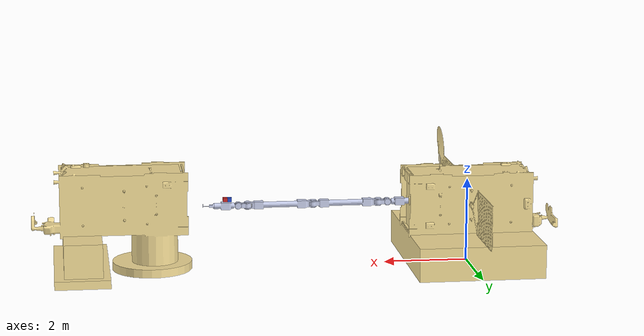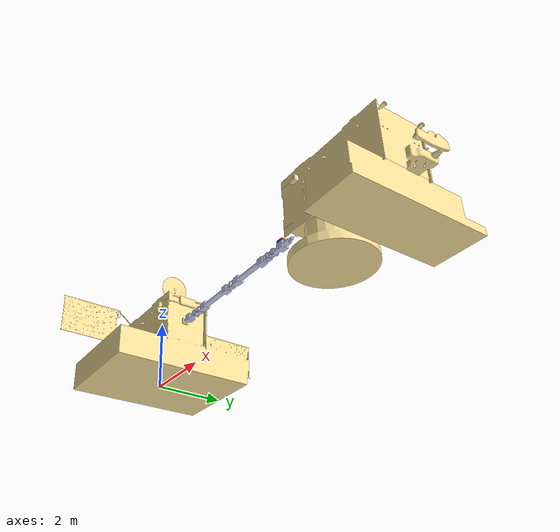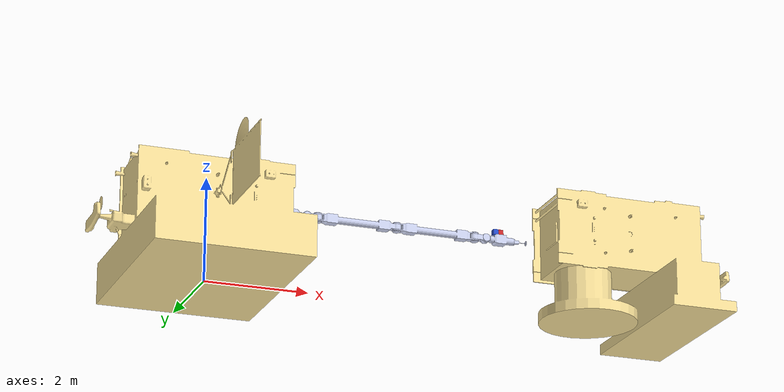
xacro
<?xml version="1.0"?>
<!-- Name your robot here -->
<robot name ="satellite_servicer" xmlns:xacro="http://wiki.ros.org/xacro">

	<!-- Include your urdf files here -->
	<!-- Include Robot's urdf filepath -->
	<xacro:include filename="$(find satellite_servicer)/urdf/satellite_servicer.urdf"/>

	<!-- Add your gazebo sensors here -->
	<!-- blade camera plugin -->
    <gazebo reference="blade_camera_link">
        <sensor type="camera" name="blade_camera">
        <update_rate>30.0</update_rate>
        <camera name="head">
            <horizontal_fov>1.3962634</horizontal_fov>
            <image>
            <width>800</width>
            <height>800</height>
            <format>R8G8B8</format>
            </image>
            <clip>
            <near>0.02</near>
            <far>300</far>
            </clip>
            <noise>
            <type>gaussian</type>
            <!-- Noise is sampled independently per pixel on each frame.
                That pixel's noise value is added to each of its color
                channels, which at that point lie in the range [0,1]. -->
            <mean>0.0</mean>
            <stddev>0.007</stddev>
            </noise>
        </camera>
        <plugin name="camera_controller" filename="libgazebo_ros_camera.so">
            <alwaysOn>true</alwaysOn>
            <updateRate>0.0</updateRate>
            <cameraName>sat_serv/blade_camera</cameraName>
            <imageTopicName>image_raw</imageTopicName>
            <cameraInfoTopicName>camera_info</cameraInfoTopicName>
            <frameName>blade_camera_link</frameName>
            <hackBaseline>0.07</hackBaseline>
            <distortionK1>0.0</distortionK1>
            <distortionK2>0.0</distortionK2>
            <distortionK3>0.0</distortionK3>
            <distortionT1>0.0</distortionT1>
            <distortionT2>0.0</distortionT2>
        </plugin>
        </sensor>
    </gazebo>

    <!-- rear camera plugin -->
    <gazebo reference="rear_camera_link">
        <sensor type="camera" name="rear_camera">
        <update_rate>30.0</update_rate>
        <camera name="head">
            <horizontal_fov>1.3962634</horizontal_fov>
            <image>
            <width>800</width>
            <height>800</height>
            <format>R8G8B8</format>
            </image>
            <clip>
            <near>0.02</near>
            <far>300</far>
            </clip>
            <noise>
            <type>gaussian</type>
            <!-- Noise is sampled independently per pixel on each frame.
                That pixel's noise value is added to each of its color
                channels, which at that point lie in the range [0,1]. -->
            <mean>0.0</mean>
            <stddev>0.007</stddev>
            </noise>
        </camera>
        <plugin name="camera_controller" filename="libgazebo_ros_camera.so">
            <alwaysOn>true</alwaysOn>
            <updateRate>0.0</updateRate>
            <cameraName>sat_serv/rear_camera</cameraName>
            <imageTopicName>image_raw</imageTopicName>
            <cameraInfoTopicName>camera_info</cameraInfoTopicName>
            <frameName>rear_camera_link</frameName>
            <hackBaseline>0.07</hackBaseline>
            <distortionK1>0.0</distortionK1>
            <distortionK2>0.0</distortionK2>
            <distortionK3>0.0</distortionK3>
            <distortionT1>0.0</distortionT1>
            <distortionT2>0.0</distortionT2>
        </plugin>
        </sensor>
    </gazebo>

	<!--  Gazebo plugin for control here is already added for you -->
    <gazebo>
        <plugin name="gazebo_ros_control" filename="libgazebo_ros_control.so">
            <robotNamespace>/satellite_servicer</robotNamespace>
            <robotSimType>gazebo_ros_control/DefaultRobotHWSim</robotSimType>
            <legacyModeNS>true</legacyModeNS>
        </plugin>
    </gazebo>

	<!-- Blade Camera -->
	<link name="blade_camera_link">
		<collision>
			<origin xyz="0 0 0" rpy="0 0 0"/>
			<geometry>
				<box size="0.10 0.10 0.10"/>
			</geometry>
		</collision>
		<visual>
			<origin xyz="0 0 0" rpy="0 0 0"/>
			<geometry>
				<box size="0.10 0.10 0.10"/>
			</geometry>
				<material name="red"/>
		</visual>

		<inertial>
			<mass value="1e-5" />
			<origin xyz="0 0 0" rpy="0 0 0"/>
			<inertia ixx="1e-6" ixy="0" ixz="0" iyy="1e-6" iyz="0" izz="1e-6" />
		</inertial>
	</link>

	<joint name="blade_camera_joint" type="fixed">
		<axis xyz="0 0 0" />
		<origin xyz="0.27 -0.15 0.0" rpy="1.5708 3.1416 0"/>
		<parent link="cutter_tool_link"/>
		<child link="blade_camera_link"/>
	</joint>

    <!-- Rear Camera -->
	<link name="rear_camera_link">
		<collision>
			<origin xyz="0 0 0" rpy="0 0 0"/>
			<geometry>
				<box size="0.10 0.10 0.10"/>
			</geometry>
		</collision>
		<visual>
			<origin xyz="0 0 0" rpy="0 0 0"/>
			<geometry>
				<box size="0.10 0.10 0.10"/>
			</geometry>
				<material name="blue"/>
		</visual>

		<inertial>
			<mass value="1e-5" />
			<origin xyz="0 0 0" rpy="0 0 0"/>
			<inertia ixx="1e-6" ixy="0" ixz="0" iyy="1e-6" iyz="0" izz="1e-6" />
		</inertial>
	</link>

	<joint name="rear_camera_joint" type="fixed">
		<axis xyz="0 0 0" />
		<origin xyz="-0.1 0.0 0.0" rpy="0 0 3.1416"/>
		<parent link="blade_camera_link"/>
		<child link="rear_camera_link"/>
	</joint>

</robot>

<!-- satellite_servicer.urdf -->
<!-- |    This document was autogenerated by xacro from /home/adarsh/catkin_ws/src/satellite_servicer/urdf/satellite_servicer_integration.urdf.xacro | -->
<!-- |    EDITING THIS FILE BY HAND IS NOT RECOMMENDED                                 | -->
<!-- Name your robot here -->
<robot name="satellite_servicer">
    <link name="dummy_link">
        <pose>0 0 0 0 0 0</pose>
    </link>
    <joint name="dummy_joint" type="fixed">
        <parent link="dummy_link" />
        <child link="satellite_link" />
    </joint>

    <link name="satellite_link">
        <inertial>
            <origin rpy="0 0 0" xyz="-0.0081358 -0.00019537 0.49571" />
            <mass value="10528" />
            <inertia ixx="14714" ixy="-8.8712" ixz="20.724" iyy="9803" iyz="-0.86237" izz="21153" />
        </inertial>

        <visual>
            <origin rpy="0 0 0" xyz="0 0 0" />
            <geometry>
                <mesh filename="package://satellite_servicer/meshes/satellite_link.STL" />
            </geometry>
            <material name="">
                <color rgba="0.96863 0.87843 0.6 1" />
            </material>
        </visual>
        <collision>
            <origin rpy="0 0 0" xyz="0 0 0" />
            <geometry>
                <mesh filename="package://satellite_servicer/meshes/satellite_link.STL" />
            </geometry>
        </collision>
    </link>

    <link name="base_link">
        <inertial>
            <origin rpy="0 0 0" xyz="1.7757E-08 2.2989E-08 0.35618" />
            <mass value="4.0606" />
            <inertia ixx="0.38271" ixy="1.9144E-07" ixz="2.0659E-08" iyy="0.37762" iyz="-3.2358E-08" izz="0.060358" />
        </inertial>

        <visual>
            <origin rpy="0 0 0" xyz="0 0 0" />
            <geometry>
                <mesh filename="package://satellite_servicer/meshes/base_link.STL" />
            </geometry>
            <material name="">
                <color rgba="0.79216 0.81961 0.93333 1" />
            </material>
        </visual>
        <collision>
            <origin rpy="0 0 0" xyz="0 0 0" />
            <geometry>
                <mesh filename="package://satellite_servicer/meshes/base_link.STL" />
            </geometry>
        </collision>
    </link>
    <joint name="joint_1" type="revolute">
        <axis xyz="0 0 1" />
        <limit effort="1000000.0" lower="-1.5708" upper="1.5708" velocity="0.05" />
        <origin rpy="0 1.5708 0" xyz="1.375 0 1.5" />
        <parent link="satellite_link" />
        <child link="base_link" />
    </joint>

    <link name="shoulder_link">
        <inertial>
            <origin rpy="0 0 0" xyz="-9.77E-15 0.17518 8.8295E-07" />
            <mass value="1.572" />
            <inertia ixx="0.048851" ixy="1.0262E-16" ixz="2.7072E-18" iyy="0.019289" iyz="-3.606E-16" izz="0.048746" />
        </inertial>

        <visual>
            <origin rpy="0 0 0" xyz="0 0 0" />
            <geometry>
                <mesh filename="package://satellite_servicer/meshes/shoulder_link.STL" />
            </geometry>
            <material name="">
                <color rgba="0.79216 0.81961 0.93333 1" />
            </material>
        </visual>
        <collision>
            <origin rpy="0 0 0" xyz="0 0 0" />
            <geometry>
                <mesh filename="package://satellite_servicer/meshes/shoulder_link.STL" />
            </geometry>
        </collision>
    </link>
    <joint name="joint_2" type="revolute">
        <axis xyz="0 0 1" />
        <limit effort="1000000.0" lower="-1.5708" upper="1.5708" velocity="0.05" />
        <origin rpy="1.5708 0 0" xyz="0 0 0.577" />
        <parent link="base_link" />
        <child link="shoulder_link" />
    </joint>

    <link name="lower_limb_link">
        <inertial>
            <origin rpy="0 0 0" xyz="-0.85056 -4.4409E-16 -4.4346E-06" />
            <mass value="10.7876" />
            <inertia ixx="0.12288" ixy="1.7482E-17" ixz="-2.1305E-16" iyy="5.4983" iyz="2.5E-17" izz="5.4963" />
        </inertial>

        <visual>
            <origin rpy="0 0 0" xyz="0 0 0" />
            <geometry>
                <mesh filename="package://satellite_servicer/meshes/lower_limb_link.STL" />
            </geometry>
            <material name="">
                <color rgba="0.79608 0.82353 0.93725 1" />
            </material>
        </visual>
        <collision>
            <origin rpy="0 0 0" xyz="0 0 0" />
            <geometry>
                <mesh filename="package://satellite_servicer/meshes/lower_limb_link.STL" />
            </geometry>
        </collision>
    </link>
    <joint name="joint_3" type="revolute">
        <axis xyz="0 0 -1" />
        <limit effort="1000000.0" lower="-1.5708" upper="1.5708" velocity="0.05" />
        <origin rpy="1.5708 0 -1.5708" xyz="0 0.224 0" />
        <parent link="shoulder_link" />
        <child link="lower_limb_link" />
    </joint>

    <link name="upper_limb_link">
        <inertial>
            <origin rpy="0 0 0" xyz="-0.78599888276463 4.44089209850063E-16 -4.43460107302229E-06" />
            <mass value="9.90154" />
            <inertia ixx="0.115110391817254" ixy="-4.53050554997357E-16" ixz="-3.95383995952211E-15" iyy="5.48795757159928" iyz="-2.21909970795336E-17" izz="5.4856363384719" />
        </inertial>

        <visual>
            <origin rpy="0 0 0" xyz="0 0 0" />
            <geometry>
                <mesh filename="package://satellite_servicer/meshes/upper_limb_link.STL" />
            </geometry>
            <material name="">
                <color rgba="0.796078431372549 0.823529411764706 0.937254901960784 1" />
            </material>
        </visual>
        <collision>
            <origin rpy="0 0 0" xyz="0 0 0" />
            <geometry>
                <mesh filename="package://satellite_servicer/meshes/upper_limb_link.STL" />
            </geometry>
        </collision>
    </link>
    <joint name="joint_4" type="revolute">
        <axis xyz="0 0 -1" />
        <limit effort="1000000.0" lower="-1.5708" upper="1.5708" velocity="0.05" />
        <origin rpy="0 0 0" xyz="-1.572 0 0" />
        <parent link="lower_limb_link" />
        <child link="upper_limb_link" />
    </joint>

    <link name="wrist_link">
        <inertial>
            <origin rpy="0 0 0" xyz="-0.042406 -4.4409E-16 -0.00017855" />
            <mass value="1.5257" />
            <inertia ixx="0.018225" ixy="-1.696E-17" ixz="3.3795E-05" iyy="0.04206" iyz="-3.6634E-18" izz="0.042168" />
        </inertial>

        <visual>
            <origin rpy="0 0 0" xyz="0 0 0" />
            <geometry>
                <mesh filename="package://satellite_servicer/meshes/wrist_link.STL" />
            </geometry>
            <material name="">
                <color rgba="0.79216 0.81961 0.93333 1" />
            </material>
        </visual>
        <collision>
            <origin rpy="0 0 0" xyz="0 0 0" />
            <geometry>
                <mesh filename="package://satellite_servicer/meshes/wrist_link.STL" />
            </geometry>
        </collision>
    </link>
    <joint name="joint_5" type="revolute">
        <axis xyz="0 0 1" />
        <limit effort="1000000.0" lower="-1.5708" upper="1.5708" velocity="0.05" />
        <origin rpy="0 0 0" xyz="-1.572 0 0" />
        <parent link="upper_limb_link" />
        <child link="wrist_link" />
    </joint>

    <link name="end_effector_link">
        <inertial>
            <origin rpy="0 0 0" xyz="-0.22082 -1.7757E-08 8.5996E-07" />
            <mass value="4.0606" />
            <inertia ixx="0.060358" ixy="-2.0659E-08" ixz="3.2358E-08" iyy="0.38271" iyz="1.9144E-07" izz="0.37762" />
        </inertial>

        <visual>
            <origin rpy="0 0 0" xyz="0 0 0" />
            <geometry>
                <mesh filename="package://satellite_servicer/meshes/end_effector_link.STL" />
            </geometry>
            <material name="">
                <color rgba="0.79216 0.81961 0.93333 1" />
            </material>
        </visual>
        <collision>
            <origin rpy="0 0 0" xyz="0 0 0" />
            <geometry>
                <mesh filename="package://satellite_servicer/meshes/end_effector_link.STL" />
            </geometry>
        </collision>
    </link>
    <joint name="joint_6" type="revolute">
        <axis xyz="0 0 1" />
        <limit effort="1000000.0" lower="-1.5708" upper="1.5708" velocity="0.05" />
        <origin rpy="-1.5708 0 0" xyz="-0.224 0 0" />
        <parent link="wrist_link" />
        <child link="end_effector_link" />
    </joint>

    <link name="cutter_tool_link">
        <inertial>
            <origin rpy="0 0 0" xyz="-0.047661 -3.5401E-07 -3.3162E-08" />
            <mass value="0.019188" />
            <inertia ixx="0.00062759" ixy="7.4288E-09" ixz="2.8377E-08" iyy="0.0015691" iyz="-2.0787E-09" izz="0.0015691" />
        </inertial>

        <visual>
            <origin rpy="0 0 0" xyz="0 0 0" />
            <geometry>
                <mesh filename="package://satellite_servicer/meshes/cutter_tool_link.STL" />
            </geometry>
            <material name="">
                <color rgba="0.79216 0.81961 0.93333 1" />
            </material>
        </visual>
        <collision>
            <origin rpy="0 0 0" xyz="0 0 0" />
            <geometry>
                <mesh filename="package://satellite_servicer/meshes/cutter_tool_link.STL" />
            </geometry>
        </collision>
    </link>
    <joint name="joint_fixed" type="fixed">
        <origin rpy="0 0 0" xyz="-0.577 0 0" />
        <parent link="end_effector_link" />
        <child link="cutter_tool_link" />
        <axis xyz="0 0 0" />
    </joint>

    <link name="repair_sat_link">
        <inertial>
            <origin rpy="0 0 0" xyz="1.775 -0.0051613 -1.0625" />
            <mass value="5237.8" />
            <inertia ixx="4615.7" ixy="-40.725" ixz="278" iyy="5805.4" iyz="-16.884" izz="6974" />
        </inertial>

        <visual>
            <origin rpy="0 0 0" xyz="0 0 0" />
            <geometry>
                <mesh filename="package://satellite_setup/meshes/repair_sat_link.STL" />
            </geometry>
            <material name="">
                <color rgba="0.96863 0.87843 0.6 1" />
            </material>
        </visual>
        <collision>
            <origin rpy="0 0 0" xyz="0 0 0" />
            <geometry>
                <mesh filename="package://satellite_setup/meshes/repair_sat_link.STL" />
            </geometry>
        </collision>
    </link>
    <joint name="joint_repair_fixed" type="fixed">
        <origin rpy="0 0 0" xyz="6.91333 -0.056 1.7" />
        <parent link="satellite_link" />
        <child link="repair_sat_link" />
        <axis xyz="0 0 0" />
    </joint>

    <transmission name="joint1_trans">
        <type>transmission_interface/SimpleTransmission</type>
        <joint name="joint_1">
            <hardwareInterface>hardware_interface/EffortJointInterface</hardwareInterface>
        </joint>
        <actuator name="joint1_motor">
            <hardwareInterface>hardware_interface/EffortJointInterface</hardwareInterface>
            <mechanicalReduction>1</mechanicalReduction>
        </actuator>
    </transmission>
    <transmission name="joint2_trans">
        <type>transmission_interface/SimpleTransmission</type>
        <joint name="joint_2">
            <hardwareInterface>hardware_interface/EffortJointInterface</hardwareInterface>
        </joint>
        <actuator name="joint2_motor">
            <hardwareInterface>hardware_interface/EffortJointInterface</hardwareInterface>
            <mechanicalReduction>1</mechanicalReduction>
        </actuator>
    </transmission>
    <transmission name="joint3_trans">
        <type>transmission_interface/SimpleTransmission</type>
        <joint name="joint_3">
            <hardwareInterface>hardware_interface/EffortJointInterface</hardwareInterface>
        </joint>
        <actuator name="joint3_motor">
            <hardwareInterface>hardware_interface/EffortJointInterface</hardwareInterface>
            <mechanicalReduction>1</mechanicalReduction>
        </actuator>
    </transmission>
    <transmission name="joint4_trans">
        <type>transmission_interface/SimpleTransmission</type>
        <joint name="joint_4">
            <hardwareInterface>hardware_interface/EffortJointInterface</hardwareInterface>
        </joint>
        <actuator name="joint4_motor">
            <hardwareInterface>hardware_interface/EffortJointInterface</hardwareInterface>
            <mechanicalReduction>1</mechanicalReduction>
        </actuator>
    </transmission>
    <transmission name="joint5_trans">
        <type>transmission_interface/SimpleTransmission</type>
        <joint name="joint_5">
            <hardwareInterface>hardware_interface/EffortJointInterface</hardwareInterface>
        </joint>
        <actuator name="joint5_motor">
            <hardwareInterface>hardware_interface/EffortJointInterface</hardwareInterface>
            <mechanicalReduction>1</mechanicalReduction>
        </actuator>
    </transmission>
    <transmission name="joint6_trans">
        <type>transmission_interface/SimpleTransmission</type>
        <joint name="joint_6">
            <hardwareInterface>hardware_interface/EffortJointInterface</hardwareInterface>
        </joint>
        <actuator name="joint6_motor">
            <hardwareInterface>hardware_interface/EffortJointInterface</hardwareInterface>
            <mechanicalReduction>1</mechanicalReduction>
        </actuator>
    </transmission>

    <!--  Gazebo plugin for control here is already added for you -->
    <gazebo>
        <plugin filename="libgazebo_ros_control.so" name="gazebo_ros_control">
            <robotNamespace>/satellite_servicer</robotNamespace>
            <robotSimType>gazebo_ros_control/DefaultRobotHWSim</robotSimType>
            <legacyModeNS>true</legacyModeNS>
        </plugin>
    </gazebo>
</robot>
